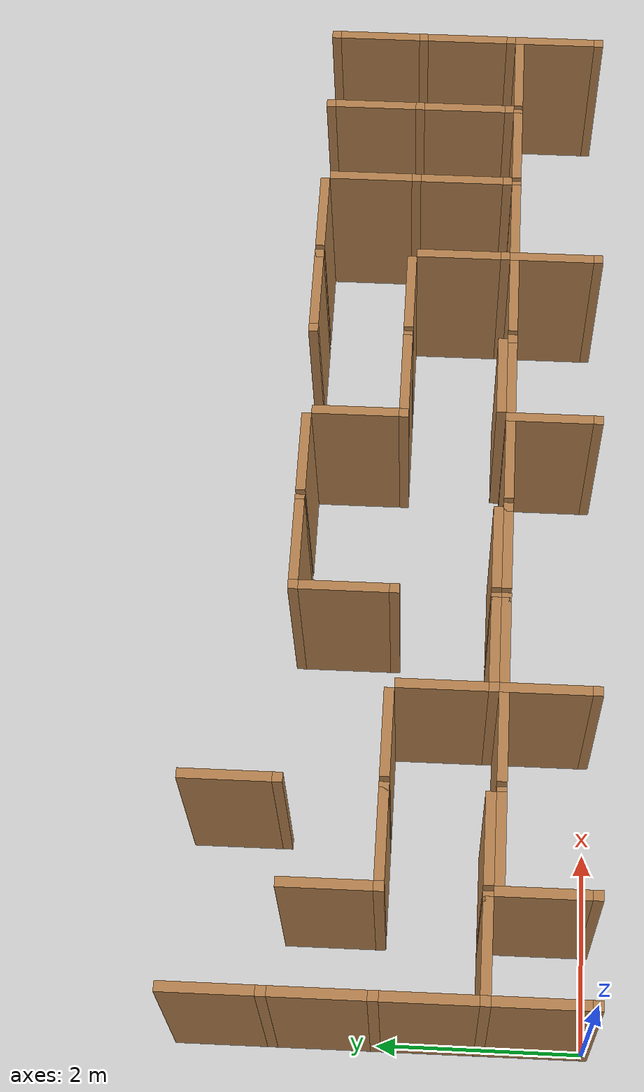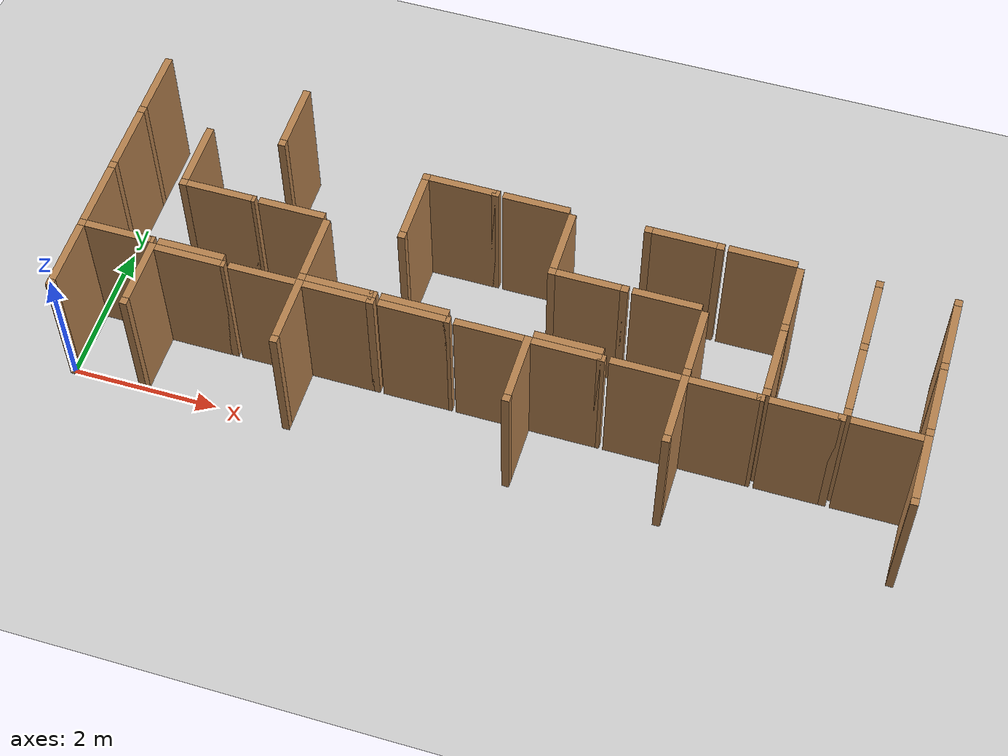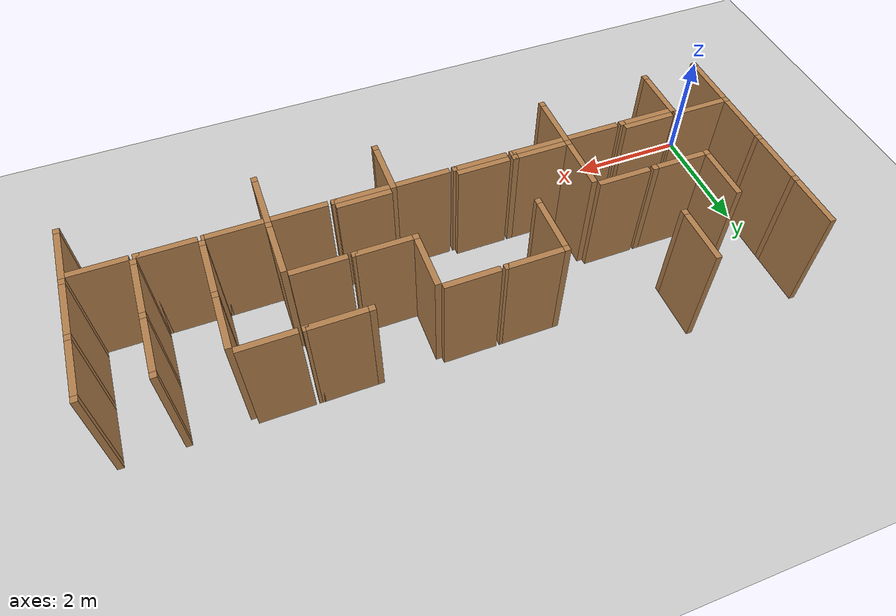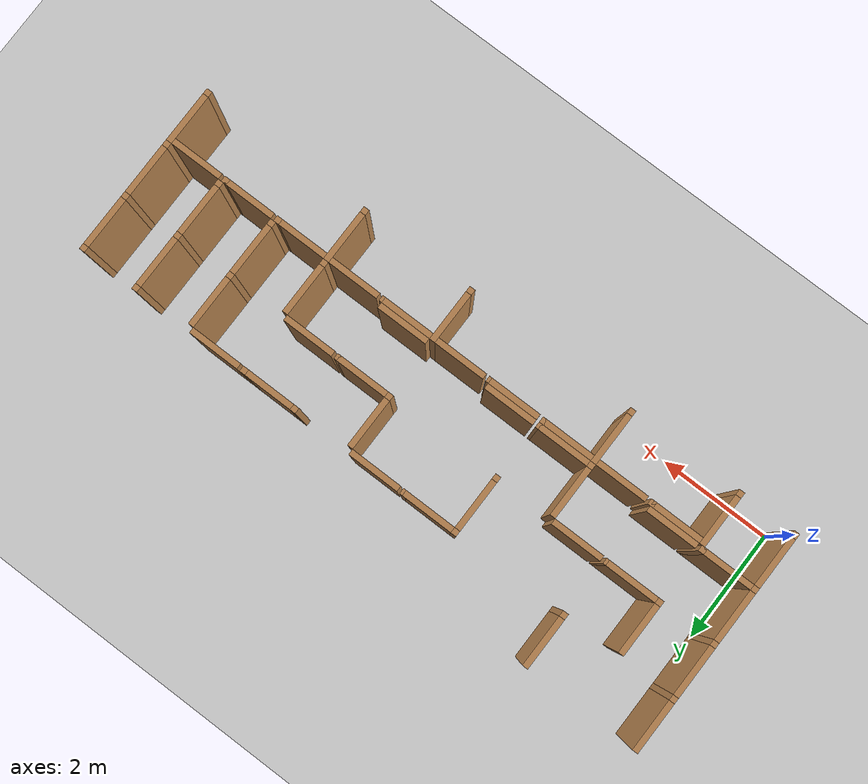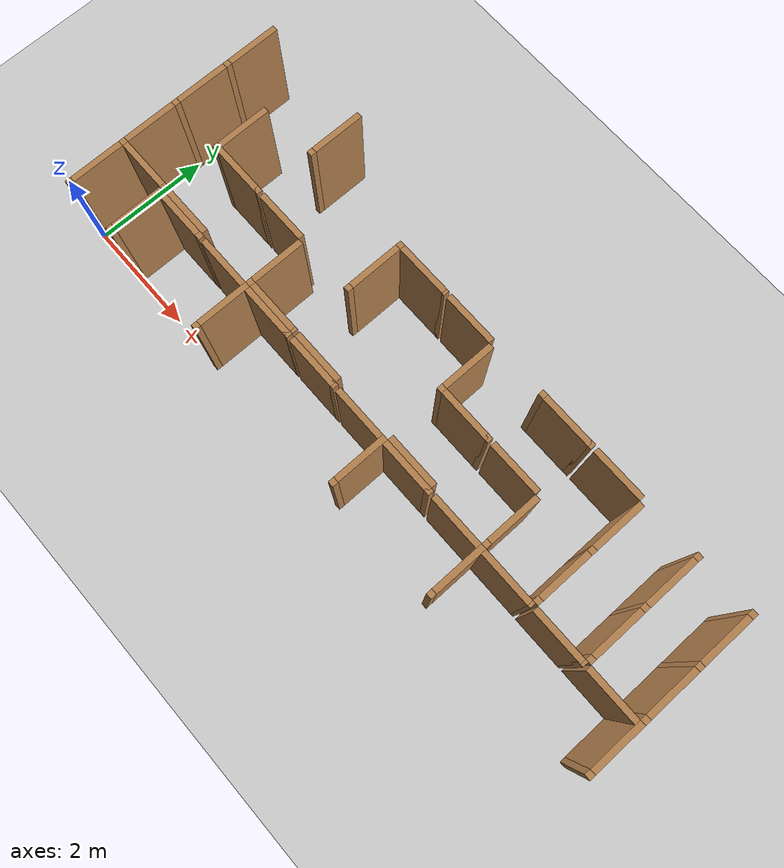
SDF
<sdf version="1.6">
 <world name="default">
  <include><uri>model://sun</uri></include>
  <model name="ground_plane">
   <static>true</static>
   <link name="link">
    <collision name="collision"><geometry><plane><size>12.0 12.0</size></plane></geometry></collision>
    <visual name="visual">
     <cast_shadows>false</cast_shadows>
     <geometry><plane><size>12.0 12.0</size></plane></geometry>
     <material>
      <script><uri>file://media/materials/scripts/gazebo.material</uri><name>Gazebo/Grey</name></script>
     </material>
    </visual>
   </link>
   <pose>6.0 6.0 0 0 0 0</pose>
  </model>
  <model name="vwall_0_0">
   <pose>0.0 0.5 1.0 0 0 0</pose>
   <link name="link">
    <collision name="collision"><geometry><box><size>0.1 0.9 2</size></box></geometry></collision>
    <visual name="visual">
     <geometry><box><size>0.1 0.9 2</size></box></geometry>
     <material>
      <script><uri>file://media/materials/scripts/gazebo.material</uri><name>Gazebo/Wood</name></script>
     </material>
    </visual>
   </link>
  </model>
  <model name="joint_0.0_0.0">
   <pose>0.0 0.0 1.0 0 0 0</pose>
   <link name="link">
    <collision name="collision"><geometry><box><size>0.1 0.1 2</size></box></geometry></collision>
    <visual name="visual">
     <geometry><box><size>0.1 0.1 2</size></box></geometry>
     <material>
      <script><uri>file://media/materials/scripts/gazebo.material</uri><name>Gazebo/Wood</name></script>
     </material>
    </visual>
   </link>
  </model>
  <model name="vwall_0_1">
   <pose>1.0 0.5 1.0 0 0 0</pose>
   <link name="link">
    <collision name="collision"><geometry><box><size>0.1 0.9 2</size></box></geometry></collision>
    <visual name="visual">
     <geometry><box><size>0.1 0.9 2</size></box></geometry>
     <material>
      <script><uri>file://media/materials/scripts/gazebo.material</uri><name>Gazebo/Wood</name></script>
     </material>
    </visual>
   </link>
  </model>
  <model name="joint_1.0_0.0">
   <pose>1.0 0.0 1.0 0 0 0</pose>
   <link name="link">
    <collision name="collision"><geometry><box><size>0.1 0.1 2</size></box></geometry></collision>
    <visual name="visual">
     <geometry><box><size>0.1 0.1 2</size></box></geometry>
     <material>
      <script><uri>file://media/materials/scripts/gazebo.material</uri><name>Gazebo/Wood</name></script>
     </material>
    </visual>
   </link>
  </model>
  <model name="vwall_0_3">
   <pose>3.0 0.5 1.0 0 0 0</pose>
   <link name="link">
    <collision name="collision"><geometry><box><size>0.1 0.9 2</size></box></geometry></collision>
    <visual name="visual">
     <geometry><box><size>0.1 0.9 2</size></box></geometry>
     <material>
      <script><uri>file://media/materials/scripts/gazebo.material</uri><name>Gazebo/Wood</name></script>
     </material>
    </visual>
   </link>
  </model>
  <model name="joint_3.0_0.0">
   <pose>3.0 0.0 1.0 0 0 0</pose>
   <link name="link">
    <collision name="collision"><geometry><box><size>0.1 0.1 2</size></box></geometry></collision>
    <visual name="visual">
     <geometry><box><size>0.1 0.1 2</size></box></geometry>
     <material>
      <script><uri>file://media/materials/scripts/gazebo.material</uri><name>Gazebo/Wood</name></script>
     </material>
    </visual>
   </link>
  </model>
  <model name="vwall_0_6">
   <pose>6.0 0.5 1.0 0 0 0</pose>
   <link name="link">
    <collision name="collision"><geometry><box><size>0.1 0.9 2</size></box></geometry></collision>
    <visual name="visual">
     <geometry><box><size>0.1 0.9 2</size></box></geometry>
     <material>
      <script><uri>file://media/materials/scripts/gazebo.material</uri><name>Gazebo/Wood</name></script>
     </material>
    </visual>
   </link>
  </model>
  <model name="joint_6.0_0.0">
   <pose>6.0 0.0 1.0 0 0 0</pose>
   <link name="link">
    <collision name="collision"><geometry><box><size>0.1 0.1 2</size></box></geometry></collision>
    <visual name="visual">
     <geometry><box><size>0.1 0.1 2</size></box></geometry>
     <material>
      <script><uri>file://media/materials/scripts/gazebo.material</uri><name>Gazebo/Wood</name></script>
     </material>
    </visual>
   </link>
  </model>
  <model name="vwall_0_8">
   <pose>8.0 0.5 1.0 0 0 0</pose>
   <link name="link">
    <collision name="collision"><geometry><box><size>0.1 0.9 2</size></box></geometry></collision>
    <visual name="visual">
     <geometry><box><size>0.1 0.9 2</size></box></geometry>
     <material>
      <script><uri>file://media/materials/scripts/gazebo.material</uri><name>Gazebo/Wood</name></script>
     </material>
    </visual>
   </link>
  </model>
  <model name="joint_8.0_0.0">
   <pose>8.0 0.0 1.0 0 0 0</pose>
   <link name="link">
    <collision name="collision"><geometry><box><size>0.1 0.1 2</size></box></geometry></collision>
    <visual name="visual">
     <geometry><box><size>0.1 0.1 2</size></box></geometry>
     <material>
      <script><uri>file://media/materials/scripts/gazebo.material</uri><name>Gazebo/Wood</name></script>
     </material>
    </visual>
   </link>
  </model>
  <model name="vwall_0_11">
   <pose>11.0 0.5 1.0 0 0 0</pose>
   <link name="link">
    <collision name="collision"><geometry><box><size>0.1 0.9 2</size></box></geometry></collision>
    <visual name="visual">
     <geometry><box><size>0.1 0.9 2</size></box></geometry>
     <material>
      <script><uri>file://media/materials/scripts/gazebo.material</uri><name>Gazebo/Wood</name></script>
     </material>
    </visual>
   </link>
  </model>
  <model name="joint_11.0_0.0">
   <pose>11.0 0.0 1.0 0 0 0</pose>
   <link name="link">
    <collision name="collision"><geometry><box><size>0.1 0.1 2</size></box></geometry></collision>
    <visual name="visual">
     <geometry><box><size>0.1 0.1 2</size></box></geometry>
     <material>
      <script><uri>file://media/materials/scripts/gazebo.material</uri><name>Gazebo/Wood</name></script>
     </material>
    </visual>
   </link>
  </model>
  <model name="vwall_1_0">
   <pose>0.0 1.5 1.0 0 0 0</pose>
   <link name="link">
    <collision name="collision"><geometry><box><size>0.1 0.9 2</size></box></geometry></collision>
    <visual name="visual">
     <geometry><box><size>0.1 0.9 2</size></box></geometry>
     <material>
      <script><uri>file://media/materials/scripts/gazebo.material</uri><name>Gazebo/Wood</name></script>
     </material>
    </visual>
   </link>
  </model>
  <model name="joint_0.0_1.0">
   <pose>0.0 1.0 1.0 0 0 0</pose>
   <link name="link">
    <collision name="collision"><geometry><box><size>0.1 0.1 2</size></box></geometry></collision>
    <visual name="visual">
     <geometry><box><size>0.1 0.1 2</size></box></geometry>
     <material>
      <script><uri>file://media/materials/scripts/gazebo.material</uri><name>Gazebo/Wood</name></script>
     </material>
    </visual>
   </link>
  </model>
  <model name="vwall_1_3">
   <pose>3.0 1.5 1.0 0 0 0</pose>
   <link name="link">
    <collision name="collision"><geometry><box><size>0.1 0.9 2</size></box></geometry></collision>
    <visual name="visual">
     <geometry><box><size>0.1 0.9 2</size></box></geometry>
     <material>
      <script><uri>file://media/materials/scripts/gazebo.material</uri><name>Gazebo/Wood</name></script>
     </material>
    </visual>
   </link>
  </model>
  <model name="joint_3.0_1.0">
   <pose>3.0 1.0 1.0 0 0 0</pose>
   <link name="link">
    <collision name="collision"><geometry><box><size>0.1 0.1 2</size></box></geometry></collision>
    <visual name="visual">
     <geometry><box><size>0.1 0.1 2</size></box></geometry>
     <material>
      <script><uri>file://media/materials/scripts/gazebo.material</uri><name>Gazebo/Wood</name></script>
     </material>
    </visual>
   </link>
  </model>
  <model name="vwall_1_8">
   <pose>8.0 1.5 1.0 0 0 0</pose>
   <link name="link">
    <collision name="collision"><geometry><box><size>0.1 0.9 2</size></box></geometry></collision>
    <visual name="visual">
     <geometry><box><size>0.1 0.9 2</size></box></geometry>
     <material>
      <script><uri>file://media/materials/scripts/gazebo.material</uri><name>Gazebo/Wood</name></script>
     </material>
    </visual>
   </link>
  </model>
  <model name="joint_8.0_1.0">
   <pose>8.0 1.0 1.0 0 0 0</pose>
   <link name="link">
    <collision name="collision"><geometry><box><size>0.1 0.1 2</size></box></geometry></collision>
    <visual name="visual">
     <geometry><box><size>0.1 0.1 2</size></box></geometry>
     <material>
      <script><uri>file://media/materials/scripts/gazebo.material</uri><name>Gazebo/Wood</name></script>
     </material>
    </visual>
   </link>
  </model>
  <model name="vwall_1_9">
   <pose>9.0 1.5 1.0 0 0 0</pose>
   <link name="link">
    <collision name="collision"><geometry><box><size>0.1 0.9 2</size></box></geometry></collision>
    <visual name="visual">
     <geometry><box><size>0.1 0.9 2</size></box></geometry>
     <material>
      <script><uri>file://media/materials/scripts/gazebo.material</uri><name>Gazebo/Wood</name></script>
     </material>
    </visual>
   </link>
  </model>
  <model name="joint_9.0_1.0">
   <pose>9.0 1.0 1.0 0 0 0</pose>
   <link name="link">
    <collision name="collision"><geometry><box><size>0.1 0.1 2</size></box></geometry></collision>
    <visual name="visual">
     <geometry><box><size>0.1 0.1 2</size></box></geometry>
     <material>
      <script><uri>file://media/materials/scripts/gazebo.material</uri><name>Gazebo/Wood</name></script>
     </material>
    </visual>
   </link>
  </model>
  <model name="vwall_1_10">
   <pose>10.0 1.5 1.0 0 0 0</pose>
   <link name="link">
    <collision name="collision"><geometry><box><size>0.1 0.9 2</size></box></geometry></collision>
    <visual name="visual">
     <geometry><box><size>0.1 0.9 2</size></box></geometry>
     <material>
      <script><uri>file://media/materials/scripts/gazebo.material</uri><name>Gazebo/Wood</name></script>
     </material>
    </visual>
   </link>
  </model>
  <model name="joint_10.0_1.0">
   <pose>10.0 1.0 1.0 0 0 0</pose>
   <link name="link">
    <collision name="collision"><geometry><box><size>0.1 0.1 2</size></box></geometry></collision>
    <visual name="visual">
     <geometry><box><size>0.1 0.1 2</size></box></geometry>
     <material>
      <script><uri>file://media/materials/scripts/gazebo.material</uri><name>Gazebo/Wood</name></script>
     </material>
    </visual>
   </link>
  </model>
  <model name="vwall_1_11">
   <pose>11.0 1.5 1.0 0 0 0</pose>
   <link name="link">
    <collision name="collision"><geometry><box><size>0.1 0.9 2</size></box></geometry></collision>
    <visual name="visual">
     <geometry><box><size>0.1 0.9 2</size></box></geometry>
     <material>
      <script><uri>file://media/materials/scripts/gazebo.material</uri><name>Gazebo/Wood</name></script>
     </material>
    </visual>
   </link>
  </model>
  <model name="joint_11.0_1.0">
   <pose>11.0 1.0 1.0 0 0 0</pose>
   <link name="link">
    <collision name="collision"><geometry><box><size>0.1 0.1 2</size></box></geometry></collision>
    <visual name="visual">
     <geometry><box><size>0.1 0.1 2</size></box></geometry>
     <material>
      <script><uri>file://media/materials/scripts/gazebo.material</uri><name>Gazebo/Wood</name></script>
     </material>
    </visual>
   </link>
  </model>
  <model name="vwall_2_0">
   <pose>0.0 2.5 1.0 0 0 0</pose>
   <link name="link">
    <collision name="collision"><geometry><box><size>0.1 0.9 2</size></box></geometry></collision>
    <visual name="visual">
     <geometry><box><size>0.1 0.9 2</size></box></geometry>
     <material>
      <script><uri>file://media/materials/scripts/gazebo.material</uri><name>Gazebo/Wood</name></script>
     </material>
    </visual>
   </link>
  </model>
  <model name="joint_0.0_2.0">
   <pose>0.0 2.0 1.0 0 0 0</pose>
   <link name="link">
    <collision name="collision"><geometry><box><size>0.1 0.1 2</size></box></geometry></collision>
    <visual name="visual">
     <geometry><box><size>0.1 0.1 2</size></box></geometry>
     <material>
      <script><uri>file://media/materials/scripts/gazebo.material</uri><name>Gazebo/Wood</name></script>
     </material>
    </visual>
   </link>
  </model>
  <model name="vwall_2_1">
   <pose>1.0 2.5 1.0 0 0 0</pose>
   <link name="link">
    <collision name="collision"><geometry><box><size>0.1 0.9 2</size></box></geometry></collision>
    <visual name="visual">
     <geometry><box><size>0.1 0.9 2</size></box></geometry>
     <material>
      <script><uri>file://media/materials/scripts/gazebo.material</uri><name>Gazebo/Wood</name></script>
     </material>
    </visual>
   </link>
  </model>
  <model name="joint_1.0_2.0">
   <pose>1.0 2.0 1.0 0 0 0</pose>
   <link name="link">
    <collision name="collision"><geometry><box><size>0.1 0.1 2</size></box></geometry></collision>
    <visual name="visual">
     <geometry><box><size>0.1 0.1 2</size></box></geometry>
     <material>
      <script><uri>file://media/materials/scripts/gazebo.material</uri><name>Gazebo/Wood</name></script>
     </material>
    </visual>
   </link>
  </model>
  <model name="vwall_2_4">
   <pose>4.0 2.5 1.0 0 0 0</pose>
   <link name="link">
    <collision name="collision"><geometry><box><size>0.1 0.9 2</size></box></geometry></collision>
    <visual name="visual">
     <geometry><box><size>0.1 0.9 2</size></box></geometry>
     <material>
      <script><uri>file://media/materials/scripts/gazebo.material</uri><name>Gazebo/Wood</name></script>
     </material>
    </visual>
   </link>
  </model>
  <model name="joint_4.0_2.0">
   <pose>4.0 2.0 1.0 0 0 0</pose>
   <link name="link">
    <collision name="collision"><geometry><box><size>0.1 0.1 2</size></box></geometry></collision>
    <visual name="visual">
     <geometry><box><size>0.1 0.1 2</size></box></geometry>
     <material>
      <script><uri>file://media/materials/scripts/gazebo.material</uri><name>Gazebo/Wood</name></script>
     </material>
    </visual>
   </link>
  </model>
  <model name="vwall_2_6">
   <pose>6.0 2.5 1.0 0 0 0</pose>
   <link name="link">
    <collision name="collision"><geometry><box><size>0.1 0.9 2</size></box></geometry></collision>
    <visual name="visual">
     <geometry><box><size>0.1 0.9 2</size></box></geometry>
     <material>
      <script><uri>file://media/materials/scripts/gazebo.material</uri><name>Gazebo/Wood</name></script>
     </material>
    </visual>
   </link>
  </model>
  <model name="joint_6.0_2.0">
   <pose>6.0 2.0 1.0 0 0 0</pose>
   <link name="link">
    <collision name="collision"><geometry><box><size>0.1 0.1 2</size></box></geometry></collision>
    <visual name="visual">
     <geometry><box><size>0.1 0.1 2</size></box></geometry>
     <material>
      <script><uri>file://media/materials/scripts/gazebo.material</uri><name>Gazebo/Wood</name></script>
     </material>
    </visual>
   </link>
  </model>
  <model name="vwall_2_9">
   <pose>9.0 2.5 1.0 0 0 0</pose>
   <link name="link">
    <collision name="collision"><geometry><box><size>0.1 0.9 2</size></box></geometry></collision>
    <visual name="visual">
     <geometry><box><size>0.1 0.9 2</size></box></geometry>
     <material>
      <script><uri>file://media/materials/scripts/gazebo.material</uri><name>Gazebo/Wood</name></script>
     </material>
    </visual>
   </link>
  </model>
  <model name="joint_9.0_2.0">
   <pose>9.0 2.0 1.0 0 0 0</pose>
   <link name="link">
    <collision name="collision"><geometry><box><size>0.1 0.1 2</size></box></geometry></collision>
    <visual name="visual">
     <geometry><box><size>0.1 0.1 2</size></box></geometry>
     <material>
      <script><uri>file://media/materials/scripts/gazebo.material</uri><name>Gazebo/Wood</name></script>
     </material>
    </visual>
   </link>
  </model>
  <model name="vwall_2_10">
   <pose>10.0 2.5 1.0 0 0 0</pose>
   <link name="link">
    <collision name="collision"><geometry><box><size>0.1 0.9 2</size></box></geometry></collision>
    <visual name="visual">
     <geometry><box><size>0.1 0.9 2</size></box></geometry>
     <material>
      <script><uri>file://media/materials/scripts/gazebo.material</uri><name>Gazebo/Wood</name></script>
     </material>
    </visual>
   </link>
  </model>
  <model name="joint_10.0_2.0">
   <pose>10.0 2.0 1.0 0 0 0</pose>
   <link name="link">
    <collision name="collision"><geometry><box><size>0.1 0.1 2</size></box></geometry></collision>
    <visual name="visual">
     <geometry><box><size>0.1 0.1 2</size></box></geometry>
     <material>
      <script><uri>file://media/materials/scripts/gazebo.material</uri><name>Gazebo/Wood</name></script>
     </material>
    </visual>
   </link>
  </model>
  <model name="vwall_2_11">
   <pose>11.0 2.5 1.0 0 0 0</pose>
   <link name="link">
    <collision name="collision"><geometry><box><size>0.1 0.9 2</size></box></geometry></collision>
    <visual name="visual">
     <geometry><box><size>0.1 0.9 2</size></box></geometry>
     <material>
      <script><uri>file://media/materials/scripts/gazebo.material</uri><name>Gazebo/Wood</name></script>
     </material>
    </visual>
   </link>
  </model>
  <model name="joint_11.0_2.0">
   <pose>11.0 2.0 1.0 0 0 0</pose>
   <link name="link">
    <collision name="collision"><geometry><box><size>0.1 0.1 2</size></box></geometry></collision>
    <visual name="visual">
     <geometry><box><size>0.1 0.1 2</size></box></geometry>
     <material>
      <script><uri>file://media/materials/scripts/gazebo.material</uri><name>Gazebo/Wood</name></script>
     </material>
    </visual>
   </link>
  </model>
  <model name="vwall_3_0">
   <pose>0.0 3.5 1.0 0 0 0</pose>
   <link name="link">
    <collision name="collision"><geometry><box><size>0.1 0.9 2</size></box></geometry></collision>
    <visual name="visual">
     <geometry><box><size>0.1 0.9 2</size></box></geometry>
     <material>
      <script><uri>file://media/materials/scripts/gazebo.material</uri><name>Gazebo/Wood</name></script>
     </material>
    </visual>
   </link>
  </model>
  <model name="joint_0.0_3.0">
   <pose>0.0 3.0 1.0 0 0 0</pose>
   <link name="link">
    <collision name="collision"><geometry><box><size>0.1 0.1 2</size></box></geometry></collision>
    <visual name="visual">
     <geometry><box><size>0.1 0.1 2</size></box></geometry>
     <material>
      <script><uri>file://media/materials/scripts/gazebo.material</uri><name>Gazebo/Wood</name></script>
     </material>
    </visual>
   </link>
  </model>
  <model name="vwall_3_2">
   <pose>2.0 3.5 1.0 0 0 0</pose>
   <link name="link">
    <collision name="collision"><geometry><box><size>0.1 0.9 2</size></box></geometry></collision>
    <visual name="visual">
     <geometry><box><size>0.1 0.9 2</size></box></geometry>
     <material>
      <script><uri>file://media/materials/scripts/gazebo.material</uri><name>Gazebo/Wood</name></script>
     </material>
    </visual>
   </link>
  </model>
  <model name="joint_2.0_3.0">
   <pose>2.0 3.0 1.0 0 0 0</pose>
   <link name="link">
    <collision name="collision"><geometry><box><size>0.1 0.1 2</size></box></geometry></collision>
    <visual name="visual">
     <geometry><box><size>0.1 0.1 2</size></box></geometry>
     <material>
      <script><uri>file://media/materials/scripts/gazebo.material</uri><name>Gazebo/Wood</name></script>
     </material>
    </visual>
   </link>
  </model>
  <model name="joint_4.0_3.0">
   <pose>4.0 3.0 1.0 0 0 0</pose>
   <link name="link">
    <collision name="collision"><geometry><box><size>0.1 0.1 2</size></box></geometry></collision>
    <visual name="visual">
     <geometry><box><size>0.1 0.1 2</size></box></geometry>
     <material>
      <script><uri>file://media/materials/scripts/gazebo.material</uri><name>Gazebo/Wood</name></script>
     </material>
    </visual>
   </link>
  </model>
  <model name="joint_7.0_3.0">
   <pose>7.0 3.0 1.0 0 0 0</pose>
   <link name="link">
    <collision name="collision"><geometry><box><size>0.1 0.1 2</size></box></geometry></collision>
    <visual name="visual">
     <geometry><box><size>0.1 0.1 2</size></box></geometry>
     <material>
      <script><uri>file://media/materials/scripts/gazebo.material</uri><name>Gazebo/Wood</name></script>
     </material>
    </visual>
   </link>
  </model>
  <model name="joint_10.0_3.0">
   <pose>10.0 3.0 1.0 0 0 0</pose>
   <link name="link">
    <collision name="collision"><geometry><box><size>0.1 0.1 2</size></box></geometry></collision>
    <visual name="visual">
     <geometry><box><size>0.1 0.1 2</size></box></geometry>
     <material>
      <script><uri>file://media/materials/scripts/gazebo.material</uri><name>Gazebo/Wood</name></script>
     </material>
    </visual>
   </link>
  </model>
  <model name="joint_11.0_3.0">
   <pose>11.0 3.0 1.0 0 0 0</pose>
   <link name="link">
    <collision name="collision"><geometry><box><size>0.1 0.1 2</size></box></geometry></collision>
    <visual name="visual">
     <geometry><box><size>0.1 0.1 2</size></box></geometry>
     <material>
      <script><uri>file://media/materials/scripts/gazebo.material</uri><name>Gazebo/Wood</name></script>
     </material>
    </visual>
   </link>
  </model>
  <model name="hwall_0_1">
   <pose>1.5 0.9 1.0 0 0 0</pose>
   <link name="link">
    <collision name="collision"><geometry><box><size>0.9 0.1 2</size></box></geometry></collision>
    <visual name="visual">
     <geometry><box><size>0.9 0.1 2</size></box></geometry>
     <material>
      <script><uri>file://media/materials/scripts/gazebo.material</uri><name>Gazebo/Wood</name></script>
     </material>
    </visual>
   </link>
  </model>
  <model name="joint_1.95_0.9">
   <pose>1.95 0.9 1.0 0 0 0</pose>
   <link name="link">
    <collision name="collision"><geometry><box><size>0.1 0.1 2</size></box></geometry></collision>
    <visual name="visual">
     <geometry><box><size>0.1 0.1 2</size></box></geometry>
     <material>
      <script><uri>file://media/materials/scripts/gazebo.material</uri><name>Gazebo/Wood</name></script>
     </material>
    </visual>
   </link>
  </model>
  <model name="hwall_0_2">
   <pose>2.5 0.9 1.0 0 0 0</pose>
   <link name="link">
    <collision name="collision"><geometry><box><size>0.9 0.1 2</size></box></geometry></collision>
    <visual name="visual">
     <geometry><box><size>0.9 0.1 2</size></box></geometry>
     <material>
      <script><uri>file://media/materials/scripts/gazebo.material</uri><name>Gazebo/Wood</name></script>
     </material>
    </visual>
   </link>
  </model>
  <model name="hwall_0_3">
   <pose>3.5 0.9 1.0 0 0 0</pose>
   <link name="link">
    <collision name="collision"><geometry><box><size>0.9 0.1 2</size></box></geometry></collision>
    <visual name="visual">
     <geometry><box><size>0.9 0.1 2</size></box></geometry>
     <material>
      <script><uri>file://media/materials/scripts/gazebo.material</uri><name>Gazebo/Wood</name></script>
     </material>
    </visual>
   </link>
  </model>
  <model name="joint_3.95_0.9">
   <pose>3.95 0.9 1.0 0 0 0</pose>
   <link name="link">
    <collision name="collision"><geometry><box><size>0.1 0.1 2</size></box></geometry></collision>
    <visual name="visual">
     <geometry><box><size>0.1 0.1 2</size></box></geometry>
     <material>
      <script><uri>file://media/materials/scripts/gazebo.material</uri><name>Gazebo/Wood</name></script>
     </material>
    </visual>
   </link>
  </model>
  <model name="hwall_0_4">
   <pose>4.5 0.9 1.0 0 0 0</pose>
   <link name="link">
    <collision name="collision"><geometry><box><size>0.9 0.1 2</size></box></geometry></collision>
    <visual name="visual">
     <geometry><box><size>0.9 0.1 2</size></box></geometry>
     <material>
      <script><uri>file://media/materials/scripts/gazebo.material</uri><name>Gazebo/Wood</name></script>
     </material>
    </visual>
   </link>
  </model>
  <model name="joint_4.95_0.9">
   <pose>4.95 0.9 1.0 0 0 0</pose>
   <link name="link">
    <collision name="collision"><geometry><box><size>0.1 0.1 2</size></box></geometry></collision>
    <visual name="visual">
     <geometry><box><size>0.1 0.1 2</size></box></geometry>
     <material>
      <script><uri>file://media/materials/scripts/gazebo.material</uri><name>Gazebo/Wood</name></script>
     </material>
    </visual>
   </link>
  </model>
  <model name="hwall_0_5">
   <pose>5.5 0.9 1.0 0 0 0</pose>
   <link name="link">
    <collision name="collision"><geometry><box><size>0.9 0.1 2</size></box></geometry></collision>
    <visual name="visual">
     <geometry><box><size>0.9 0.1 2</size></box></geometry>
     <material>
      <script><uri>file://media/materials/scripts/gazebo.material</uri><name>Gazebo/Wood</name></script>
     </material>
    </visual>
   </link>
  </model>
  <model name="hwall_0_6">
   <pose>6.5 0.9 1.0 0 0 0</pose>
   <link name="link">
    <collision name="collision"><geometry><box><size>0.9 0.1 2</size></box></geometry></collision>
    <visual name="visual">
     <geometry><box><size>0.9 0.1 2</size></box></geometry>
     <material>
      <script><uri>file://media/materials/scripts/gazebo.material</uri><name>Gazebo/Wood</name></script>
     </material>
    </visual>
   </link>
  </model>
  <model name="joint_6.95_0.9">
   <pose>6.95 0.9 1.0 0 0 0</pose>
   <link name="link">
    <collision name="collision"><geometry><box><size>0.1 0.1 2</size></box></geometry></collision>
    <visual name="visual">
     <geometry><box><size>0.1 0.1 2</size></box></geometry>
     <material>
      <script><uri>file://media/materials/scripts/gazebo.material</uri><name>Gazebo/Wood</name></script>
     </material>
    </visual>
   </link>
  </model>
  <model name="hwall_0_7">
   <pose>7.5 0.9 1.0 0 0 0</pose>
   <link name="link">
    <collision name="collision"><geometry><box><size>0.9 0.1 2</size></box></geometry></collision>
    <visual name="visual">
     <geometry><box><size>0.9 0.1 2</size></box></geometry>
     <material>
      <script><uri>file://media/materials/scripts/gazebo.material</uri><name>Gazebo/Wood</name></script>
     </material>
    </visual>
   </link>
  </model>
  <model name="hwall_0_8">
   <pose>8.5 0.9 1.0 0 0 0</pose>
   <link name="link">
    <collision name="collision"><geometry><box><size>0.9 0.1 2</size></box></geometry></collision>
    <visual name="visual">
     <geometry><box><size>0.9 0.1 2</size></box></geometry>
     <material>
      <script><uri>file://media/materials/scripts/gazebo.material</uri><name>Gazebo/Wood</name></script>
     </material>
    </visual>
   </link>
  </model>
  <model name="joint_8.95_0.9">
   <pose>8.95 0.9 1.0 0 0 0</pose>
   <link name="link">
    <collision name="collision"><geometry><box><size>0.1 0.1 2</size></box></geometry></collision>
    <visual name="visual">
     <geometry><box><size>0.1 0.1 2</size></box></geometry>
     <material>
      <script><uri>file://media/materials/scripts/gazebo.material</uri><name>Gazebo/Wood</name></script>
     </material>
    </visual>
   </link>
  </model>
  <model name="hwall_0_9">
   <pose>9.5 0.9 1.0 0 0 0</pose>
   <link name="link">
    <collision name="collision"><geometry><box><size>0.9 0.1 2</size></box></geometry></collision>
    <visual name="visual">
     <geometry><box><size>0.9 0.1 2</size></box></geometry>
     <material>
      <script><uri>file://media/materials/scripts/gazebo.material</uri><name>Gazebo/Wood</name></script>
     </material>
    </visual>
   </link>
  </model>
  <model name="joint_9.95_0.9">
   <pose>9.95 0.9 1.0 0 0 0</pose>
   <link name="link">
    <collision name="collision"><geometry><box><size>0.1 0.1 2</size></box></geometry></collision>
    <visual name="visual">
     <geometry><box><size>0.1 0.1 2</size></box></geometry>
     <material>
      <script><uri>file://media/materials/scripts/gazebo.material</uri><name>Gazebo/Wood</name></script>
     </material>
    </visual>
   </link>
  </model>
  <model name="hwall_0_10">
   <pose>10.5 0.9 1.0 0 0 0</pose>
   <link name="link">
    <collision name="collision"><geometry><box><size>0.9 0.1 2</size></box></geometry></collision>
    <visual name="visual">
     <geometry><box><size>0.9 0.1 2</size></box></geometry>
     <material>
      <script><uri>file://media/materials/scripts/gazebo.material</uri><name>Gazebo/Wood</name></script>
     </material>
    </visual>
   </link>
  </model>
  <model name="hwall_1_0">
   <pose>0.5 1.0 1.0 0 0 0</pose>
   <link name="link">
    <collision name="collision"><geometry><box><size>0.9 0.1 2</size></box></geometry></collision>
    <visual name="visual">
     <geometry><box><size>0.9 0.1 2</size></box></geometry>
     <material>
      <script><uri>file://media/materials/scripts/gazebo.material</uri><name>Gazebo/Wood</name></script>
     </material>
    </visual>
   </link>
  </model>
  <model name="joint_0.95_1.0">
   <pose>0.95 1.0 1.0 0 0 0</pose>
   <link name="link">
    <collision name="collision"><geometry><box><size>0.1 0.1 2</size></box></geometry></collision>
    <visual name="visual">
     <geometry><box><size>0.1 0.1 2</size></box></geometry>
     <material>
      <script><uri>file://media/materials/scripts/gazebo.material</uri><name>Gazebo/Wood</name></script>
     </material>
    </visual>
   </link>
  </model>
  <model name="hwall_1_1">
   <pose>1.5 1.0 1.0 0 0 0</pose>
   <link name="link">
    <collision name="collision"><geometry><box><size>0.9 0.1 2</size></box></geometry></collision>
    <visual name="visual">
     <geometry><box><size>0.9 0.1 2</size></box></geometry>
     <material>
      <script><uri>file://media/materials/scripts/gazebo.material</uri><name>Gazebo/Wood</name></script>
     </material>
    </visual>
   </link>
  </model>
  <model name="hwall_1_3">
   <pose>3.5 1.0 1.0 0 0 0</pose>
   <link name="link">
    <collision name="collision"><geometry><box><size>0.9 0.1 2</size></box></geometry></collision>
    <visual name="visual">
     <geometry><box><size>0.9 0.1 2</size></box></geometry>
     <material>
      <script><uri>file://media/materials/scripts/gazebo.material</uri><name>Gazebo/Wood</name></script>
     </material>
    </visual>
   </link>
  </model>
  <model name="joint_3.95_1.0">
   <pose>3.95 1.0 1.0 0 0 0</pose>
   <link name="link">
    <collision name="collision"><geometry><box><size>0.1 0.1 2</size></box></geometry></collision>
    <visual name="visual">
     <geometry><box><size>0.1 0.1 2</size></box></geometry>
     <material>
      <script><uri>file://media/materials/scripts/gazebo.material</uri><name>Gazebo/Wood</name></script>
     </material>
    </visual>
   </link>
  </model>
  <model name="hwall_1_4">
   <pose>4.5 1.0 1.0 0 0 0</pose>
   <link name="link">
    <collision name="collision"><geometry><box><size>0.9 0.1 2</size></box></geometry></collision>
    <visual name="visual">
     <geometry><box><size>0.9 0.1 2</size></box></geometry>
     <material>
      <script><uri>file://media/materials/scripts/gazebo.material</uri><name>Gazebo/Wood</name></script>
     </material>
    </visual>
   </link>
  </model>
  <model name="hwall_1_6">
   <pose>6.5 1.0 1.0 0 0 0</pose>
   <link name="link">
    <collision name="collision"><geometry><box><size>0.9 0.1 2</size></box></geometry></collision>
    <visual name="visual">
     <geometry><box><size>0.9 0.1 2</size></box></geometry>
     <material>
      <script><uri>file://media/materials/scripts/gazebo.material</uri><name>Gazebo/Wood</name></script>
     </material>
    </visual>
   </link>
  </model>
  <model name="hwall_2_1">
   <pose>1.5 2.0 1.0 0 0 0</pose>
   <link name="link">
    <collision name="collision"><geometry><box><size>0.9 0.1 2</size></box></geometry></collision>
    <visual name="visual">
     <geometry><box><size>0.9 0.1 2</size></box></geometry>
     <material>
      <script><uri>file://media/materials/scripts/gazebo.material</uri><name>Gazebo/Wood</name></script>
     </material>
    </visual>
   </link>
  </model>
  <model name="joint_1.95_2.0">
   <pose>1.95 2.0 1.0 0 0 0</pose>
   <link name="link">
    <collision name="collision"><geometry><box><size>0.1 0.1 2</size></box></geometry></collision>
    <visual name="visual">
     <geometry><box><size>0.1 0.1 2</size></box></geometry>
     <material>
      <script><uri>file://media/materials/scripts/gazebo.material</uri><name>Gazebo/Wood</name></script>
     </material>
    </visual>
   </link>
  </model>
  <model name="hwall_2_2">
   <pose>2.5 2.0 1.0 0 0 0</pose>
   <link name="link">
    <collision name="collision"><geometry><box><size>0.9 0.1 2</size></box></geometry></collision>
    <visual name="visual">
     <geometry><box><size>0.9 0.1 2</size></box></geometry>
     <material>
      <script><uri>file://media/materials/scripts/gazebo.material</uri><name>Gazebo/Wood</name></script>
     </material>
    </visual>
   </link>
  </model>
  <model name="hwall_2_6">
   <pose>6.5 2.0 1.0 0 0 0</pose>
   <link name="link">
    <collision name="collision"><geometry><box><size>0.9 0.1 2</size></box></geometry></collision>
    <visual name="visual">
     <geometry><box><size>0.9 0.1 2</size></box></geometry>
     <material>
      <script><uri>file://media/materials/scripts/gazebo.material</uri><name>Gazebo/Wood</name></script>
     </material>
    </visual>
   </link>
  </model>
  <model name="joint_6.95_2.0">
   <pose>6.95 2.0 1.0 0 0 0</pose>
   <link name="link">
    <collision name="collision"><geometry><box><size>0.1 0.1 2</size></box></geometry></collision>
    <visual name="visual">
     <geometry><box><size>0.1 0.1 2</size></box></geometry>
     <material>
      <script><uri>file://media/materials/scripts/gazebo.material</uri><name>Gazebo/Wood</name></script>
     </material>
    </visual>
   </link>
  </model>
  <model name="hwall_2_7">
   <pose>7.5 2.0 1.0 0 0 0</pose>
   <link name="link">
    <collision name="collision"><geometry><box><size>0.9 0.1 2</size></box></geometry></collision>
    <visual name="visual">
     <geometry><box><size>0.9 0.1 2</size></box></geometry>
     <material>
      <script><uri>file://media/materials/scripts/gazebo.material</uri><name>Gazebo/Wood</name></script>
     </material>
    </visual>
   </link>
  </model>
  <model name="hwall_3_4">
   <pose>4.5 3.0 1.0 0 0 0</pose>
   <link name="link">
    <collision name="collision"><geometry><box><size>0.9 0.1 2</size></box></geometry></collision>
    <visual name="visual">
     <geometry><box><size>0.9 0.1 2</size></box></geometry>
     <material>
      <script><uri>file://media/materials/scripts/gazebo.material</uri><name>Gazebo/Wood</name></script>
     </material>
    </visual>
   </link>
  </model>
  <model name="joint_4.95_3.0">
   <pose>4.95 3.0 1.0 0 0 0</pose>
   <link name="link">
    <collision name="collision"><geometry><box><size>0.1 0.1 2</size></box></geometry></collision>
    <visual name="visual">
     <geometry><box><size>0.1 0.1 2</size></box></geometry>
     <material>
      <script><uri>file://media/materials/scripts/gazebo.material</uri><name>Gazebo/Wood</name></script>
     </material>
    </visual>
   </link>
  </model>
  <model name="hwall_3_5">
   <pose>5.5 3.0 1.0 0 0 0</pose>
   <link name="link">
    <collision name="collision"><geometry><box><size>0.9 0.1 2</size></box></geometry></collision>
    <visual name="visual">
     <geometry><box><size>0.9 0.1 2</size></box></geometry>
     <material>
      <script><uri>file://media/materials/scripts/gazebo.material</uri><name>Gazebo/Wood</name></script>
     </material>
    </visual>
   </link>
  </model>
  <model name="hwall_3_7">
   <pose>7.5 3.0 1.0 0 0 0</pose>
   <link name="link">
    <collision name="collision"><geometry><box><size>0.9 0.1 2</size></box></geometry></collision>
    <visual name="visual">
     <geometry><box><size>0.9 0.1 2</size></box></geometry>
     <material>
      <script><uri>file://media/materials/scripts/gazebo.material</uri><name>Gazebo/Wood</name></script>
     </material>
    </visual>
   </link>
  </model>
  <model name="joint_7.95_3.0">
   <pose>7.95 3.0 1.0 0 0 0</pose>
   <link name="link">
    <collision name="collision"><geometry><box><size>0.1 0.1 2</size></box></geometry></collision>
    <visual name="visual">
     <geometry><box><size>0.1 0.1 2</size></box></geometry>
     <material>
      <script><uri>file://media/materials/scripts/gazebo.material</uri><name>Gazebo/Wood</name></script>
     </material>
    </visual>
   </link>
  </model>
  <model name="hwall_3_8">
   <pose>8.5 3.0 1.0 0 0 0</pose>
   <link name="link">
    <collision name="collision"><geometry><box><size>0.9 0.1 2</size></box></geometry></collision>
    <visual name="visual">
     <geometry><box><size>0.9 0.1 2</size></box></geometry>
     <material>
      <script><uri>file://media/materials/scripts/gazebo.material</uri><name>Gazebo/Wood</name></script>
     </material>
    </visual>
   </link>
  </model>
 </world>
</sdf>
